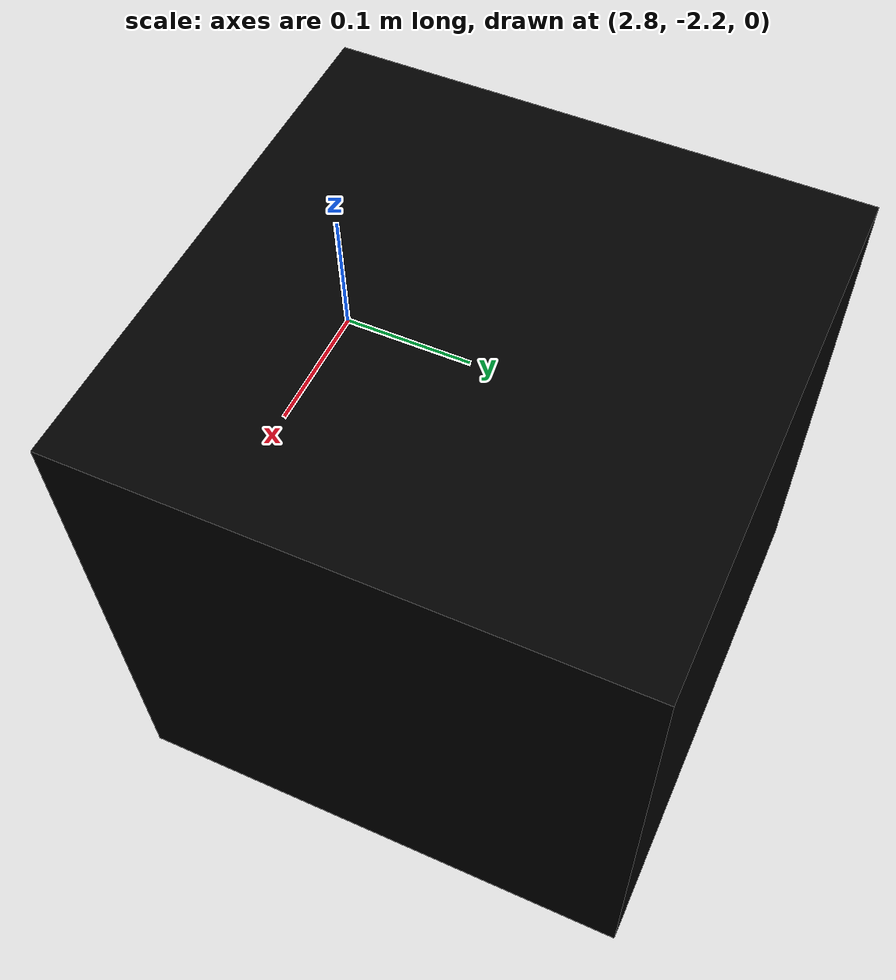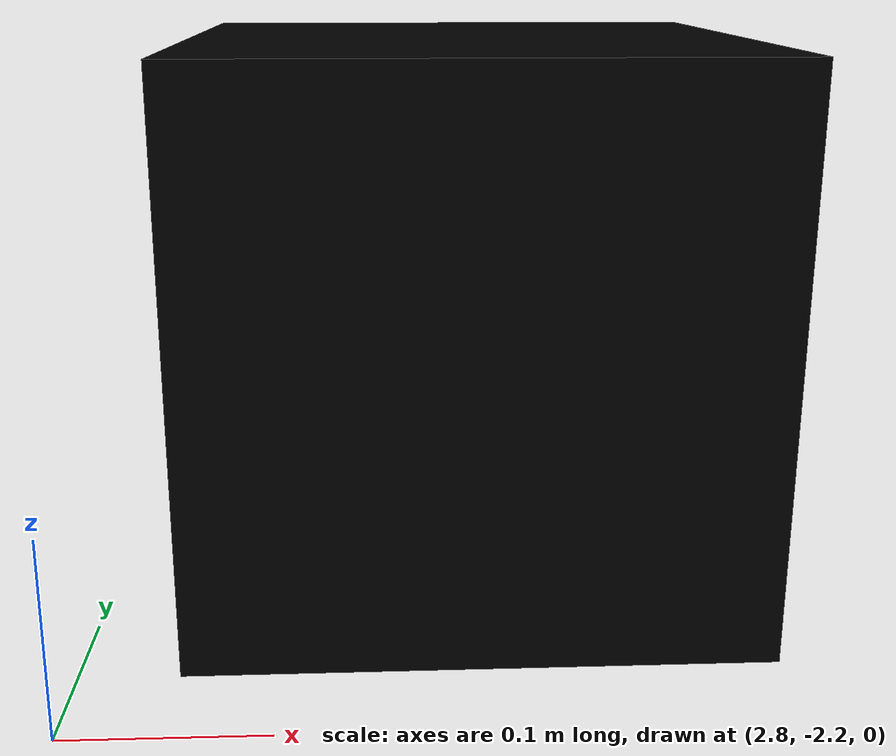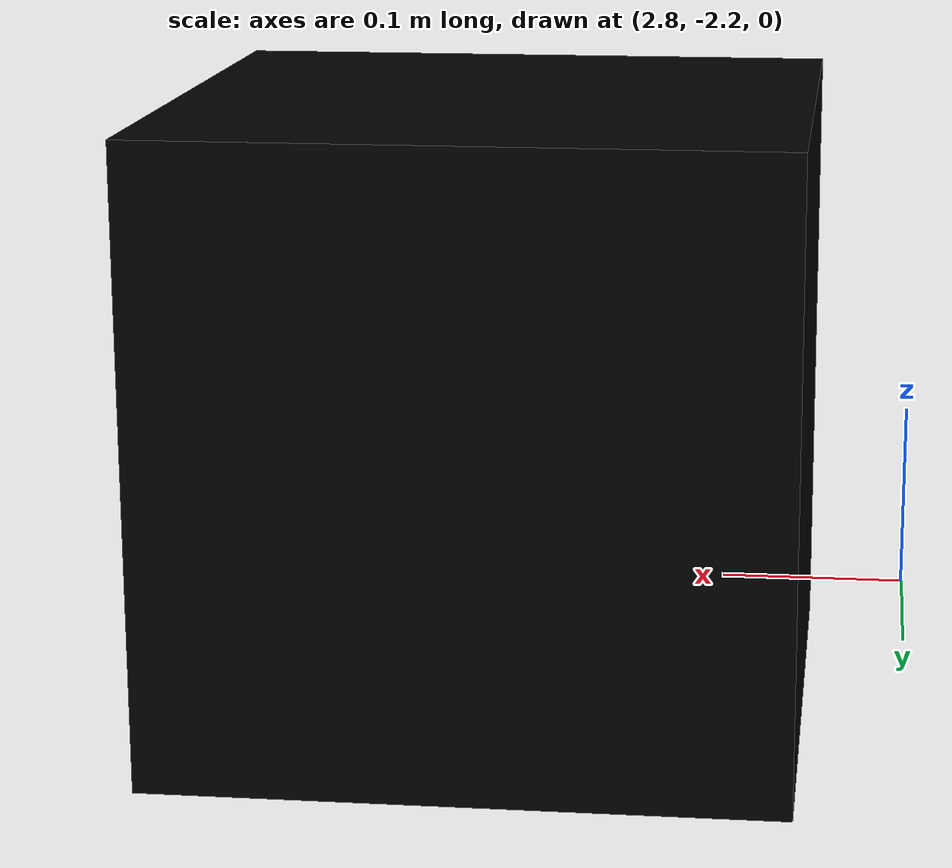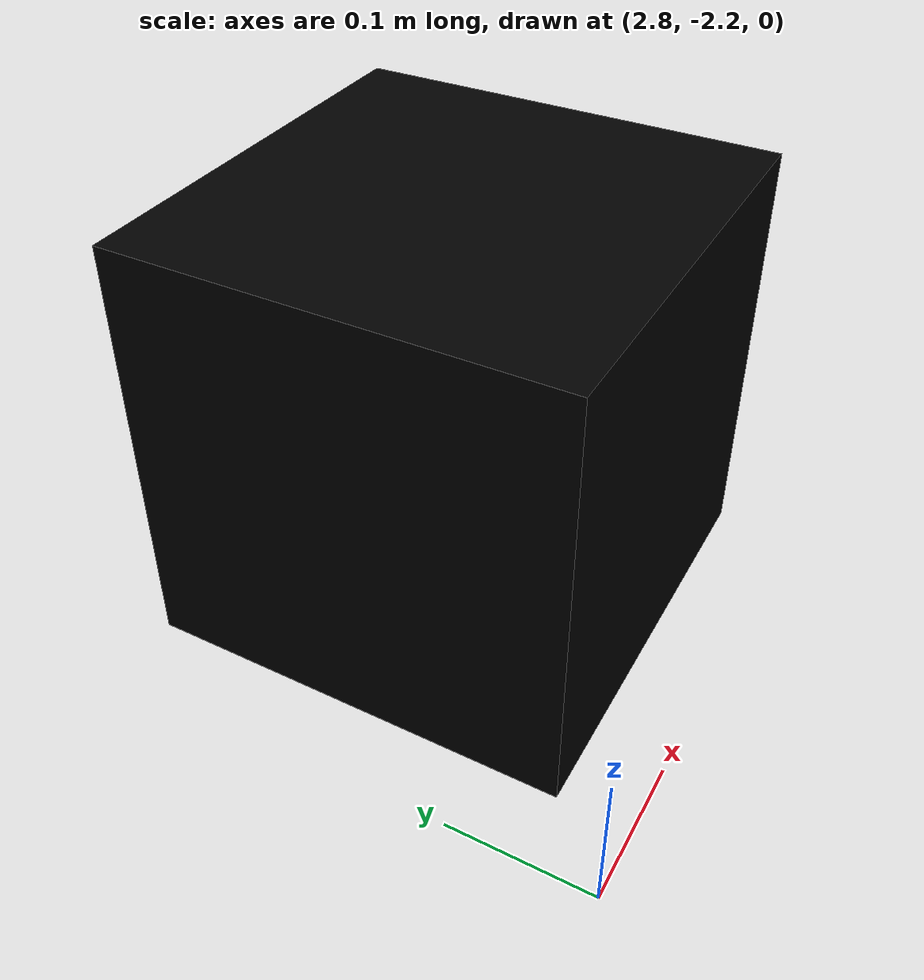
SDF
<?xml version='1.0'?>
<sdf version='1.4'>
  <model name="AruCo_Block_18">
    <static>true</static>
    <link name='chassis'>
            <pose>3 -2 0.15 0 0 0</pose>

            <collision name='collision'>
              <geometry>
                <box>
                  <size>.3 .3 .3</size>
                </box>
              </geometry>
            </collision>

            <visual name='visual_18'>
              <geometry>
                <box>
                  <size>.3 .3 .3</size>
                </box>
              </geometry>
              <material>
                <script>
                <uri>model://AruCo_Block_18/materials/scripts</uri>
                <uri>model://AruCo_Block_18/materials/textures</uri>
                <name>block18</name>
                </script>
                <ambient>0 0 0 1</ambient>
                <diffuse>0 0 0 1</diffuse>
                <specular>0 0 0 0</specular>
                <emissive>1 1 1 1</emissive>
              </material>
            </visual>
          </link>
  </model>
</sdf>
